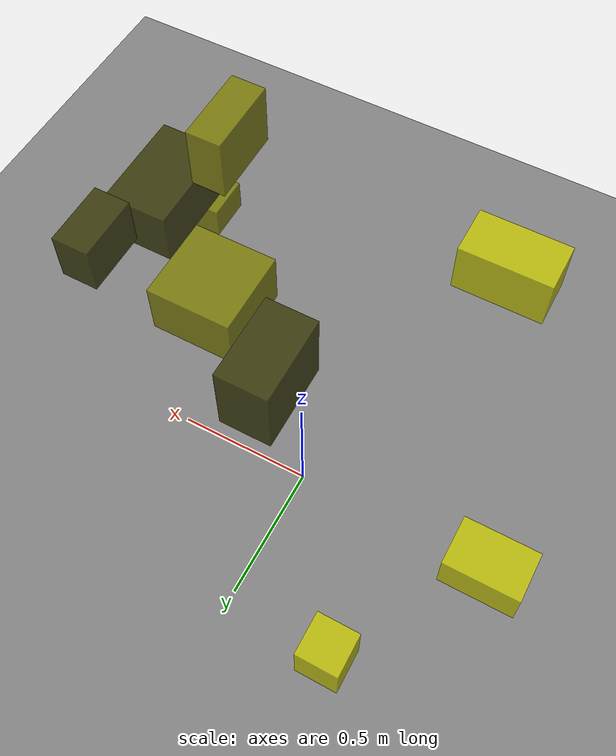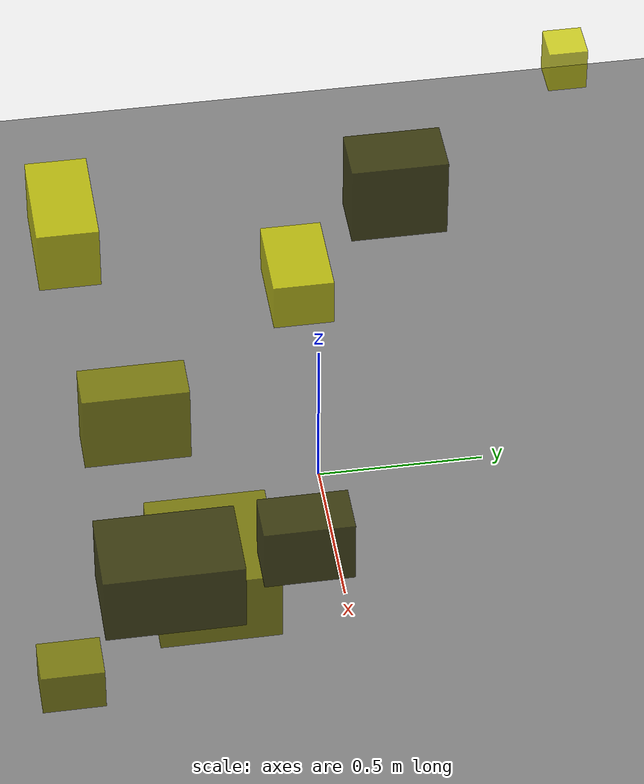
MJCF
<?xml version="1.0"?>
<mujoco model="obstacle_scene">
  <compiler angle="radian" coordinate="local"/>
  <option timestep="0.001" gravity="0 0 -9.81"/>

  <asset>
    <material name="obstacle_mat" rgba="0.8 0.8 0.0 0.8"/>
    <material name="ground_mat" rgba="0.5 0.5 0.5 1"/>
  </asset>

  <worldbody>
    <!-- Ground plane -->
    <geom name="ground" type="plane" size="3 3 0.1" material="ground_mat"/>

    <!-- Obstacles -->
    <body name="obstacle_0" pos="0.877120 -0.554566 0.557928">
      <geom name="obs_0" type="box" size="0.124277 0.196688 0.110478" rgba="0.2 0.2 0.0 0.8"/>
    </body>
    <body name="obstacle_1" pos="0.617077 -0.611345 0.929203">
      <geom name="obs_1" type="box" size="0.065041 0.147853 0.122446" rgba="0.5 0.5 0.0 0.8"/>
    </body>
    <body name="obstacle_2" pos="-0.514132 0.810682 1.098621">
      <geom name="obs_2" type="box" size="0.056549 0.056716 0.067906" rgba="0.8 0.8 0.0 0.8"/>
    </body>
    <body name="obstacle_3" pos="0.914529 -0.178890 0.673137">
      <geom name="obs_3" type="box" size="0.071150 0.126642 0.099863" rgba="0.2 0.2 0.0 0.8"/>
    </body>
    <body name="obstacle_4" pos="0.876698 -0.842513 0.188150">
      <geom name="obs_4" type="box" size="0.068467 0.090053 0.069330" rgba="0.5 0.5 0.0 0.8"/>
    </body>
    <body name="obstacle_5" pos="-0.748892 0.048048 0.136555">
      <geom name="obs_5" type="box" size="0.142844 0.094706 0.081692" rgba="0.8 0.8 0.0 0.8"/>
    </body>
    <body name="obstacle_6" pos="-0.020640 0.221836 1.109575">
      <geom name="obs_6" type="box" size="0.081658 0.137840 0.126469" rgba="0.2 0.2 0.0 0.8"/>
    </body>
    <body name="obstacle_7" pos="0.605132 -0.400997 0.273665">
      <geom name="obs_7" type="box" size="0.174831 0.175545 0.119495" rgba="0.5 0.5 0.0 0.8"/>
    </body>
    <body name="obstacle_8" pos="-0.410999 -0.701520 0.742145">
      <geom name="obs_8" type="box" size="0.166809 0.091395 0.102847" rgba="0.8 0.8 0.0 0.8"/>
    </body>
  </worldbody>
</mujoco>
